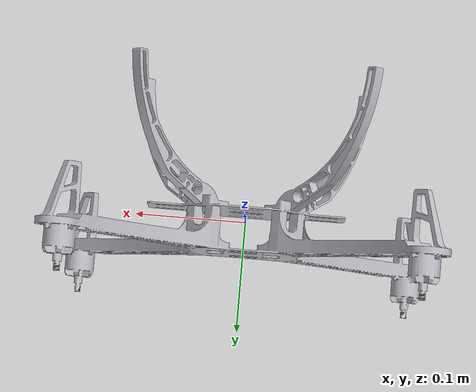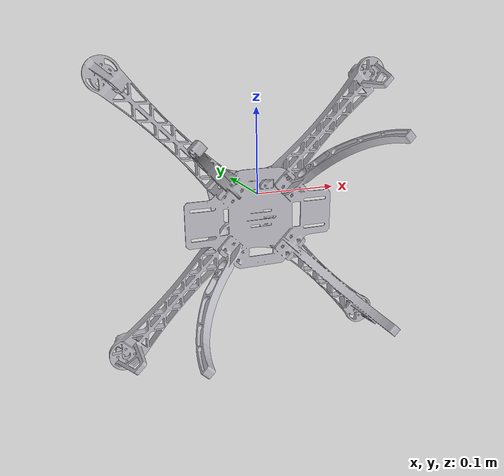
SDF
<sdf version='1.11'>
  <model name='F450'>
    <link name='base_link'>
      <inertial>
        <pose>-1.054264181030751e-07 0.0025919260853499888 -0.026708763818450769 0 0 0</pose>
        <mass>2.165049907987274</mass>
        <inertia>
          <ixx>0.024339</ixx>
          <ixy>0</ixy>
          <ixz>0</ixz>
          <iyy>0.043381999999999997</iyy>
          <iyz>-3.9999999999999998e-06</iyz>
          <izz>0.02453</izz>
        </inertia>
      </inertial>
      <collision name='base_link_collision'>
        <pose>0 0 0 0 0 0</pose>
        <geometry>
          <mesh>
            <scale>0.001 0.001 0.001</scale>
            <uri>file:///home/fwd/ros2_ws/install/F450_description/share/F450_description/meshes/base_link.stl</uri>
          </mesh>
        </geometry>
        <surface>
          <contact>
            <ode/>
          </contact>
          <friction>
            <ode>
              <mu>0.20000000000000001</mu>
              <mu2>0.20000000000000001</mu2>
            </ode>
          </friction>
        </surface>
      </collision>
      <visual name='base_link_visual'>
        <pose>0 0 0 0 0 0</pose>
        <geometry>
          <mesh>
            <scale>0.001 0.001 0.001</scale>
            <uri>file:///home/fwd/ros2_ws/install/F450_description/share/F450_description/meshes/base_link.stl</uri>
          </mesh>
        </geometry>
        <material>
          <script>
            <name>Gazebo/Silver</name>
            <uri>file://media/materials/scripts/gazebo.material</uri>
          </script>
          <diffuse>0.875 0.875 0.875 1</diffuse>
          <ambient>0.875 0.875 0.875 1</ambient>
        </material>
      </visual>
      <self_collide>true</self_collide>
      <gravity>true</gravity>
    </link>
    <plugin name='control' filename='libgazebo_ros_control.so'/>
    <plugin name='gz::sim::systems::JointStatePublisher' filename='gz-sim-joint-state-publisher-system'/>
  </model>
</sdf>
